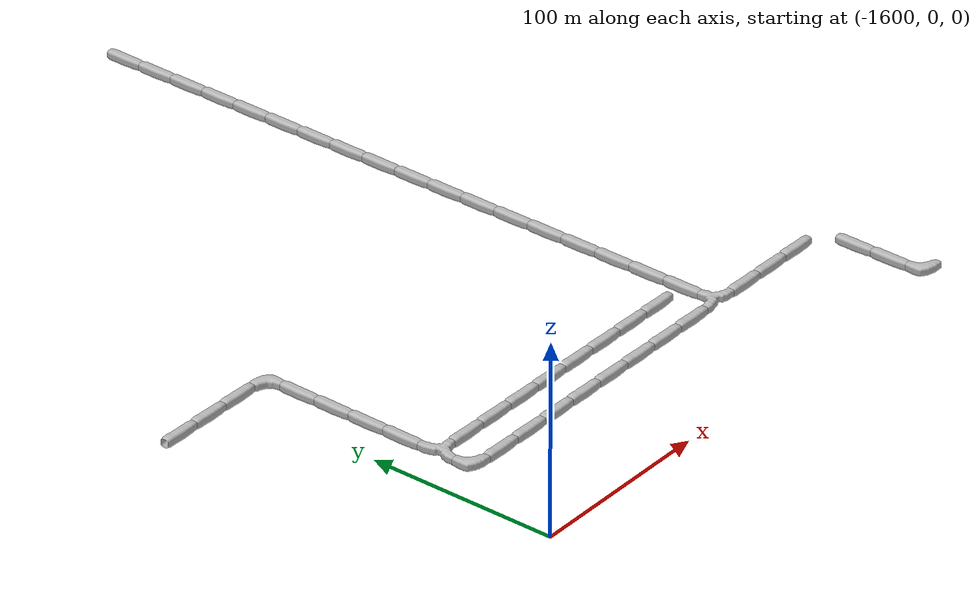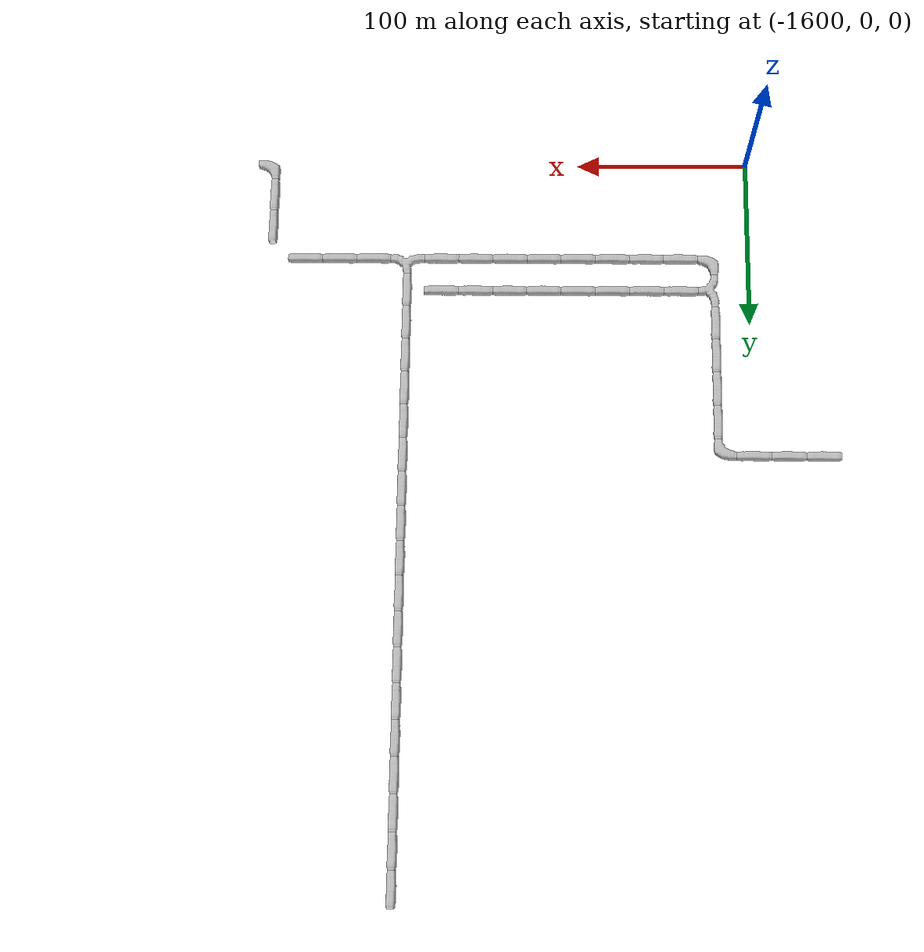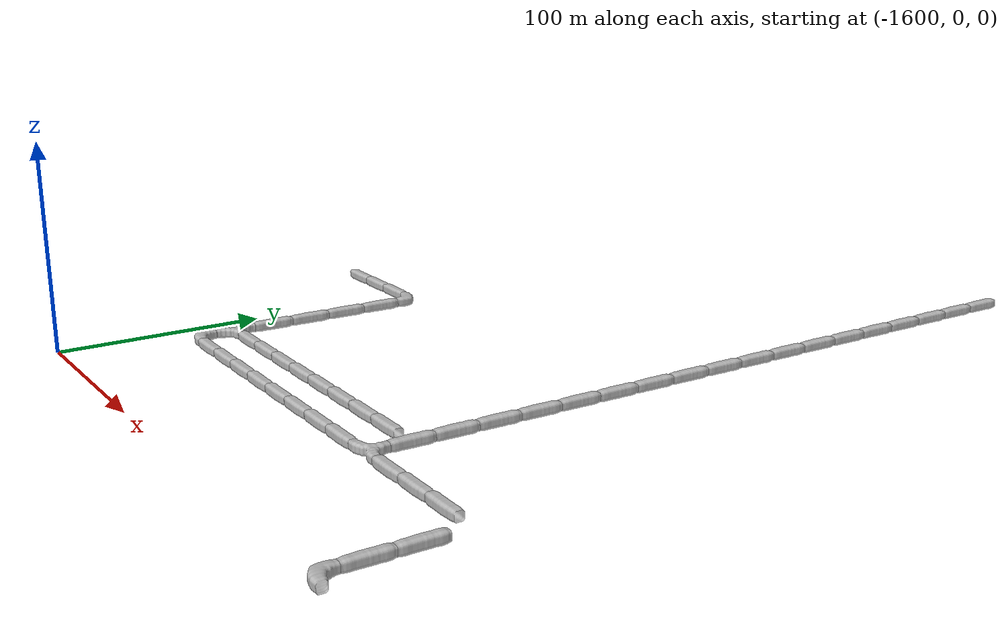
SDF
<sdf version="1.6">
 <world name="cave_8000_2">
  <include>
   <static>true</static>
   <name>cave_-66_0</name>
   <pose>-1320 0 0 0 0 0.0</pose>
   <uri>model://cave_L_20m</uri>
  </include>
  <include>
   <static>true</static>
   <name>cave_-66_1</name>
   <pose>-1320 20 0 0 0 0.0</pose>
   <uri>model://cave_straight_20m</uri>
  </include>
  <include>
   <static>true</static>
   <name>cave_-66_2</name>
   <pose>-1320 40 0 0 0 0.0</pose>
   <uri>model://cave_straight_20m</uri>
  </include>
  <include>
   <static>true</static>
   <name>cave_-67_3</name>
   <pose>-1340 60 0 0 0 1.5707963267948966</pose>
   <uri>model://cave_straight_20m</uri>
  </include>
  <include>
   <static>true</static>
   <name>cave_-68_3</name>
   <pose>-1360 60 0 0 0 1.5707963267948966</pose>
   <uri>model://cave_straight_20m</uri>
  </include>
  <include>
   <static>true</static>
   <name>cave_-69_3</name>
   <pose>-1380 60 0 0 0 1.5707963267948966</pose>
   <uri>model://cave_straight_20m</uri>
  </include>
  <include>
   <static>true</static>
   <name>cave_-70_3</name>
   <pose>-1400 60 0 0 0 0.0</pose>
   <uri>model://cave_3way_20m</uri>
  </include>
  <include>
   <static>true</static>
   <name>cave_-71_3</name>
   <pose>-1420 60 0 0 0 1.5707963267948966</pose>
   <uri>model://cave_straight_20m</uri>
  </include>
  <include>
   <static>true</static>
   <name>cave_-72_3</name>
   <pose>-1440 60 0 0 0 1.5707963267948966</pose>
   <uri>model://cave_straight_20m</uri>
  </include>
  <include>
   <static>true</static>
   <name>cave_-73_3</name>
   <pose>-1460 60 0 0 0 1.5707963267948966</pose>
   <uri>model://cave_straight_20m</uri>
  </include>
  <include>
   <static>true</static>
   <name>cave_-74_3</name>
   <pose>-1480 60 0 0 0 1.5707963267948966</pose>
   <uri>model://cave_straight_20m</uri>
  </include>
  <include>
   <static>true</static>
   <name>cave_-75_3</name>
   <pose>-1500 60 0 0 0 1.5707963267948966</pose>
   <uri>model://cave_straight_20m</uri>
  </include>
  <include>
   <static>true</static>
   <name>cave_-76_3</name>
   <pose>-1520 60 0 0 0 1.5707963267948966</pose>
   <uri>model://cave_straight_20m</uri>
  </include>
  <include>
   <static>true</static>
   <name>cave_-77_3</name>
   <pose>-1540 60 0 0 0 1.5707963267948966</pose>
   <uri>model://cave_straight_20m</uri>
  </include>
  <include>
   <static>true</static>
   <name>cave_-78_3</name>
   <pose>-1560 60 0 0 0 1.5707963267948966</pose>
   <uri>model://cave_straight_20m</uri>
  </include>
  <include>
   <static>true</static>
   <name>cave_-79_3</name>
   <pose>-1580 60 0 0 0 0.0</pose>
   <uri>model://cave_L_20m</uri>
  </include>
  <include>
   <static>true</static>
   <name>cave_-79_4</name>
   <pose>-1580 80 0 0 0 -1.5707963267948966</pose>
   <uri>model://cave_3way_20m</uri>
  </include>
  <include>
   <static>true</static>
   <name>cave_-78_4</name>
   <pose>-1560 80 0 0 0 1.5707963267948966</pose>
   <uri>model://cave_straight_20m</uri>
  </include>
  <include>
   <static>true</static>
   <name>cave_-77_4</name>
   <pose>-1540 80 0 0 0 1.5707963267948966</pose>
   <uri>model://cave_straight_20m</uri>
  </include>
  <include>
   <static>true</static>
   <name>cave_-76_4</name>
   <pose>-1520 80 0 0 0 1.5707963267948966</pose>
   <uri>model://cave_straight_20m</uri>
  </include>
  <include>
   <static>true</static>
   <name>cave_-75_4</name>
   <pose>-1500 80 0 0 0 1.5707963267948966</pose>
   <uri>model://cave_straight_20m</uri>
  </include>
  <include>
   <static>true</static>
   <name>cave_-74_4</name>
   <pose>-1480 80 0 0 0 1.5707963267948966</pose>
   <uri>model://cave_straight_20m</uri>
  </include>
  <include>
   <static>true</static>
   <name>cave_-73_4</name>
   <pose>-1460 80 0 0 0 1.5707963267948966</pose>
   <uri>model://cave_straight_20m</uri>
  </include>
  <include>
   <static>true</static>
   <name>cave_-72_4</name>
   <pose>-1440 80 0 0 0 1.5707963267948966</pose>
   <uri>model://cave_straight_20m</uri>
  </include>
  <include>
   <static>true</static>
   <name>cave_-71_4</name>
   <pose>-1420 80 0 0 0 1.5707963267948966</pose>
   <uri>model://cave_straight_20m</uri>
  </include>
  <include>
   <static>true</static>
   <name>cave_-79_5</name>
   <pose>-1580 100 0 0 0 0.0</pose>
   <uri>model://cave_straight_20m</uri>
  </include>
  <include>
   <static>true</static>
   <name>cave_-79_6</name>
   <pose>-1580 120 0 0 0 0.0</pose>
   <uri>model://cave_straight_20m</uri>
  </include>
  <include>
   <static>true</static>
   <name>cave_-79_7</name>
   <pose>-1580 140 0 0 0 0.0</pose>
   <uri>model://cave_straight_20m</uri>
  </include>
  <include>
   <static>true</static>
   <name>cave_-79_8</name>
   <pose>-1580 160 0 0 0 0.0</pose>
   <uri>model://cave_straight_20m</uri>
  </include>
  <include>
   <static>true</static>
   <name>cave_-79_9</name>
   <pose>-1580 180 0 0 0 3.141592653589793</pose>
   <uri>model://cave_L_20m</uri>
  </include>
  <include>
   <static>true</static>
   <name>cave_-80_9</name>
   <pose>-1600 180 0 0 0 1.5707963267948966</pose>
   <uri>model://cave_straight_20m</uri>
  </include>
  <include>
   <static>true</static>
   <name>cave_-81_9</name>
   <pose>-1620 180 0 0 0 1.5707963267948966</pose>
   <uri>model://cave_straight_20m</uri>
  </include>
  <include>
   <static>true</static>
   <name>cave_-82_9</name>
   <pose>-1640 180 0 0 0 1.5707963267948966</pose>
   <uri>model://cave_straight_20m</uri>
  </include>
  <include>
   <static>true</static>
   <name>cave_-70_4</name>
   <pose>-1400 80 0 0 0 0.0</pose>
   <uri>model://cave_straight_20m</uri>
  </include>
  <include>
   <static>true</static>
   <name>cave_-70_5</name>
   <pose>-1400 100 0 0 0 0.0</pose>
   <uri>model://cave_straight_20m</uri>
  </include>
  <include>
   <static>true</static>
   <name>cave_-70_6</name>
   <pose>-1400 120 0 0 0 0.0</pose>
   <uri>model://cave_straight_20m</uri>
  </include>
  <include>
   <static>true</static>
   <name>cave_-70_7</name>
   <pose>-1400 140 0 0 0 0.0</pose>
   <uri>model://cave_straight_20m</uri>
  </include>
  <include>
   <static>true</static>
   <name>cave_-70_8</name>
   <pose>-1400 160 0 0 0 0.0</pose>
   <uri>model://cave_straight_20m</uri>
  </include>
  <include>
   <static>true</static>
   <name>cave_-70_9</name>
   <pose>-1400 180 0 0 0 0.0</pose>
   <uri>model://cave_straight_20m</uri>
  </include>
  <include>
   <static>true</static>
   <name>cave_-70_10</name>
   <pose>-1400 200 0 0 0 0.0</pose>
   <uri>model://cave_straight_20m</uri>
  </include>
  <include>
   <static>true</static>
   <name>cave_-70_11</name>
   <pose>-1400 220 0 0 0 0.0</pose>
   <uri>model://cave_straight_20m</uri>
  </include>
  <include>
   <static>true</static>
   <name>cave_-70_12</name>
   <pose>-1400 240 0 0 0 0.0</pose>
   <uri>model://cave_straight_20m</uri>
  </include>
  <include>
   <static>true</static>
   <name>cave_-70_13</name>
   <pose>-1400 260 0 0 0 0.0</pose>
   <uri>model://cave_straight_20m</uri>
  </include>
  <include>
   <static>true</static>
   <name>cave_-70_14</name>
   <pose>-1400 280 0 0 0 0.0</pose>
   <uri>model://cave_straight_20m</uri>
  </include>
  <include>
   <static>true</static>
   <name>cave_-70_15</name>
   <pose>-1400 300 0 0 0 0.0</pose>
   <uri>model://cave_straight_20m</uri>
  </include>
  <include>
   <static>true</static>
   <name>cave_-70_16</name>
   <pose>-1400 320 0 0 0 0.0</pose>
   <uri>model://cave_straight_20m</uri>
  </include>
  <include>
   <static>true</static>
   <name>cave_-70_17</name>
   <pose>-1400 340 0 0 0 0.0</pose>
   <uri>model://cave_straight_20m</uri>
  </include>
  <include>
   <static>true</static>
   <name>cave_-70_18</name>
   <pose>-1400 360 0 0 0 0.0</pose>
   <uri>model://cave_straight_20m</uri>
  </include>
  <include>
   <static>true</static>
   <name>cave_-70_19</name>
   <pose>-1400 380 0 0 0 0.0</pose>
   <uri>model://cave_straight_20m</uri>
  </include>
  <include>
   <static>true</static>
   <name>cave_-70_20</name>
   <pose>-1400 400 0 0 0 0.0</pose>
   <uri>model://cave_straight_20m</uri>
  </include>
  <include>
   <static>true</static>
   <name>cave_-70_21</name>
   <pose>-1400 420 0 0 0 0.0</pose>
   <uri>model://cave_straight_20m</uri>
  </include>
 </world>
</sdf>
